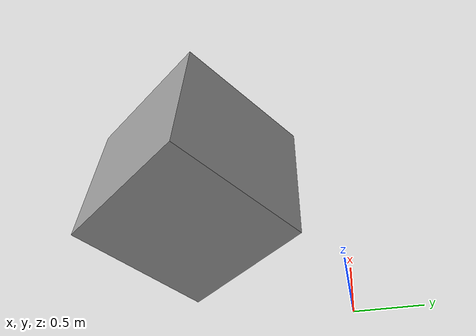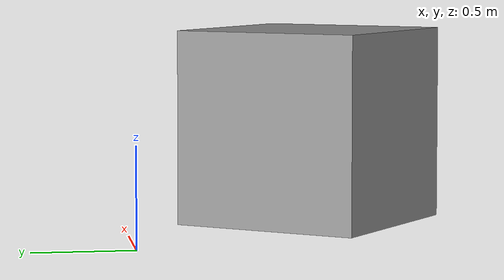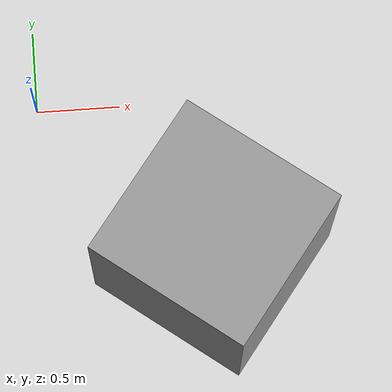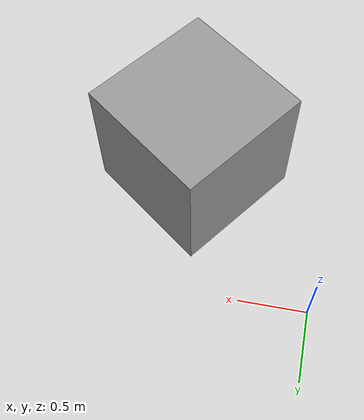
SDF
<?xml version='1.0'?>
<sdf version='1.7'>
  <model name='siyah_1'>
    <pose>0.8495 -0.8445 0 0 -0 0</pose>
    <link name='Wall_12'>
      <collision name='Wall_12_Collision'>
        <geometry>
          <box>
            <size>1.01 1 1</size>
          </box>
        </geometry>
        <pose>0 0 0.5 0 -0 0</pose>
      </collision>
      <visual name='Wall_12_Visual'>
        <pose>0 0 0.5 0 -0 0</pose>
        <geometry>
          <box>
            <size>1.01 1 1</size>
          </box>
        </geometry>
        <material>
          <script>
            <uri>file://media/materials/scripts/gazebo.material</uri>
            <name>Gazebo/Grey</name>
          </script>
          <ambient>0 0 0 1</ambient>
        </material>
        <meta>
          <layer>0</layer>
        </meta>
      </visual>
      <pose>0.1455 -0.1415 0 0 -0 -0.643501</pose>
    </link>
    <static>1</static>
  </model>
</sdf>
